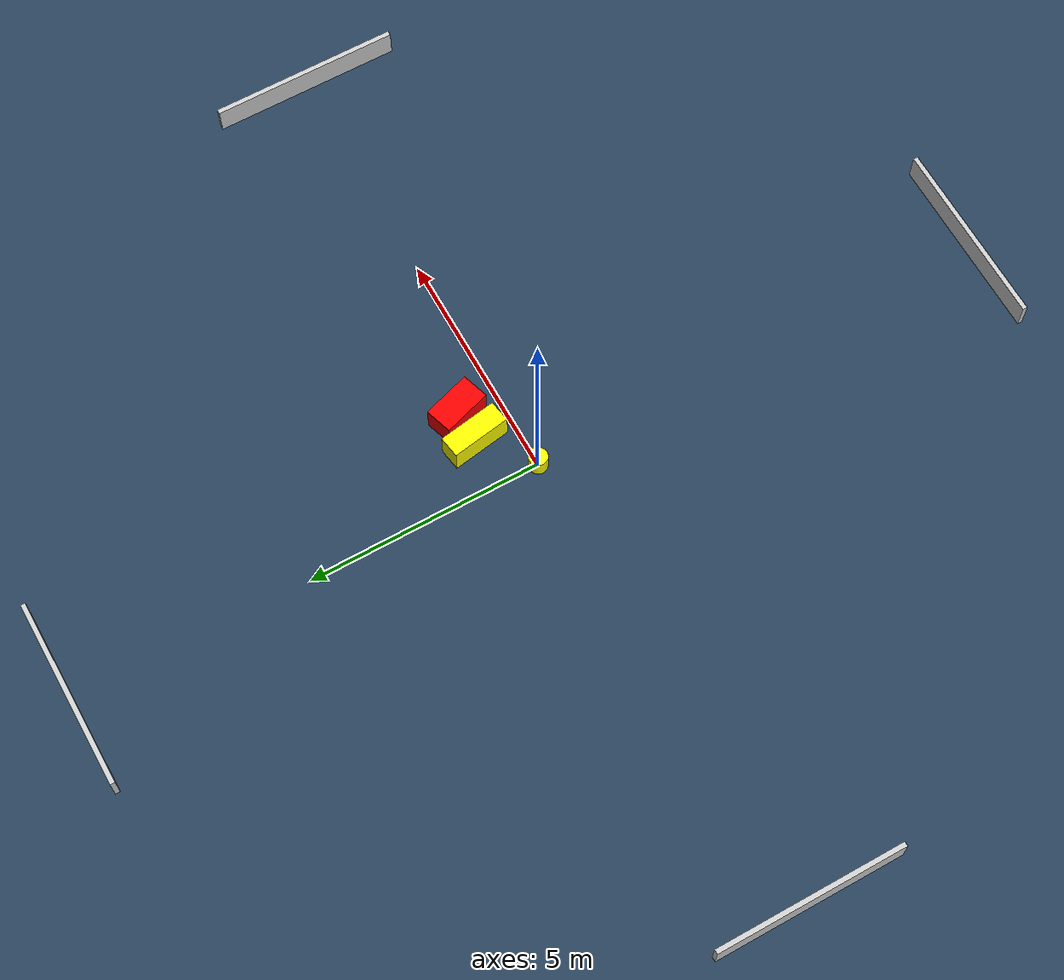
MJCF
<?xml version="1.0" ?>
<mujoco model="generated_environment">
  <option timestep="0.01" integrator="RK4" cone="elliptic"/>
  <default>
    <geom density="1"/>
  </default>
  <asset>
    <texture builtin="gradient" height="3072" name="skybox" rgb1="0.3 0.5 0.7" rgb2="0 0 0" type="skybox" width="512"/>
    <texture builtin="checker" height="300" name="groundplane" rgb1="0.2 0.3 0.4" rgb2="0.1 0.2 0.3" type="2d" width="300"/>
    <material name="groundplane" reflectance="0.2" texrepeat="5 5" texture="groundplane"/>
  </asset>
  <worldbody>
    <light dir="0 0 -1" directional="true" pos="0 0 1.5"/>
    <geom condim="3" friction="0.5 0.005 0.001" material="groundplane" name="floor" pos="0 0 0" size="0 0 0.05" type="plane"/>
    <body name="walls">
      <geom name="wall_1" condim="4" pos="-10.0 0.0 0.3" rgba="0.800000011920929 0.800000011920929 0.800000011920929 1.0" size="0.05 2.0 0.3" type="box"/>
      <geom name="wall_2" condim="4" pos="10.0 0.0 0.3" rgba="0.800000011920929 0.800000011920929 0.800000011920929 1.0" size="0.05 2.0 0.3" type="box"/>
      <geom name="wall_3" condim="4" pos="0.0 -10.0 0.3" rgba="0.800000011920929 0.800000011920929 0.800000011920929 1.0" size="2.0 0.05 0.3" type="box"/>
      <geom name="wall_4" condim="4" pos="0.0 10.0 0.3" rgba="0.800000011920929 0.800000011920929 0.800000011920929 1.0" size="2.0 0.05 0.3" type="box"/>
    </body>
    <body name="robot">
      <joint name="joint_x" type="slide" pos="0 0 0" axis="1 0 0"/>
      <joint name="joint_y" type="slide" pos="0 0 0" axis="0 1 0"/>
      <geom name="robot" type="cylinder" pos="0.0 0.0 0.2" size="0.2 0.2 0.0" mass="5.0" friction="1.0 0.005 0.0001" condim="4" rgba="1.0 1.0 0.0 1.0"/>
    </body>
    <body name="obstacle_1_movable">
      <geom name="obstacle_1_movable" condim="4" pos="1.038676765010703 0.8421653993815814 0.3" euler="0 0 9.329299956788333" friction="0.0 0.005 0.001" rgba="1.0 1.0 0.0 1.0" size="0.2313750699585833 0.6279154761164848 0.3" type="box" mass="0.1"/>
      <joint type="free"/>
    </body>
    <body name="obstacle_2_static">
      <geom name="obstacle_2_static" condim="4" pos="1.6880016179287345 0.8772596179488598 0.3" euler="0 0 287.7696401606594" friction="0.0 0.005 0.001" rgba="1.0 0.0 0.0 1.0" size="0.5254701998538669 0.2948609132319649 0.3" type="box"/>
    </body>
  </worldbody>
  <actuator>
    <motor name="actuator_x" joint="joint_x" gear="1" ctrlrange="-1 1"/>
    <motor name="actuator_y" joint="joint_y" gear="1" ctrlrange="-1 1"/>
  </actuator>
</mujoco>
